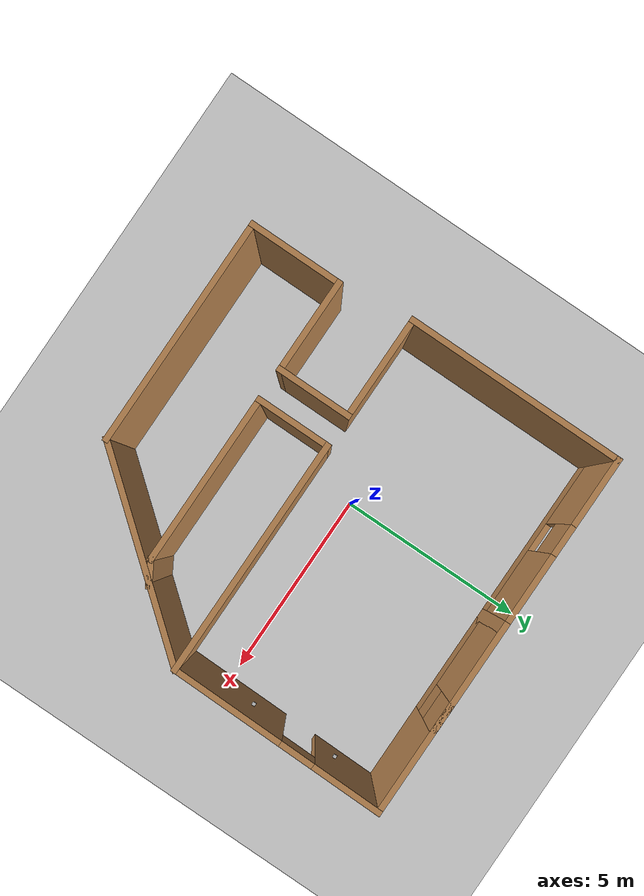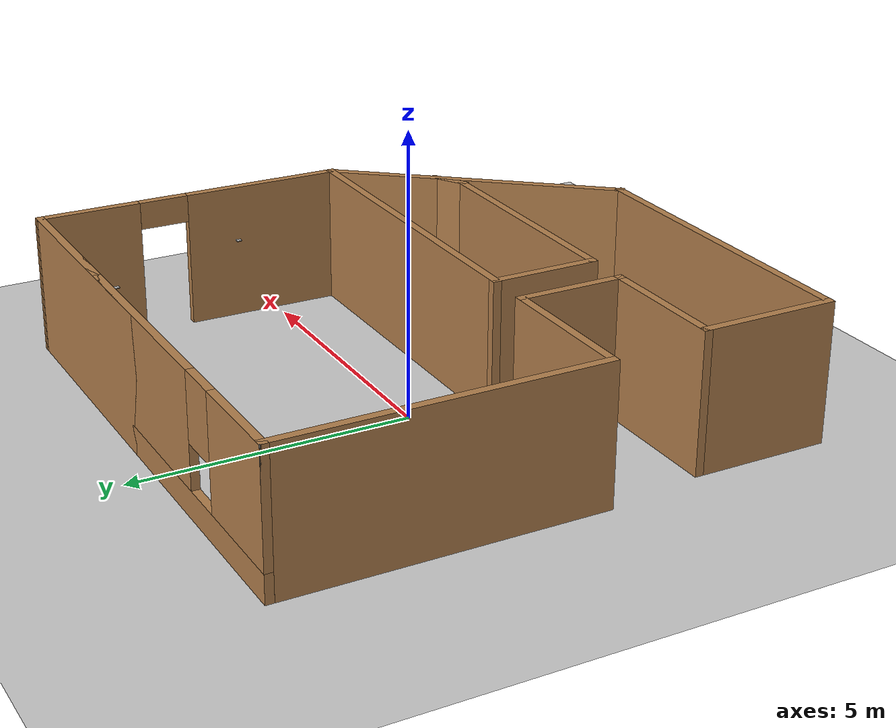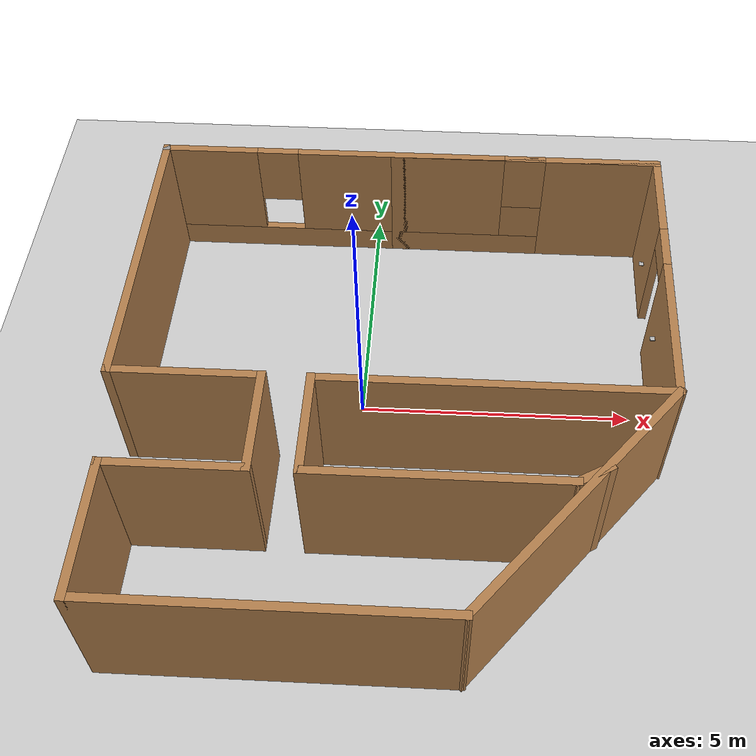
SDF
<sdf version="1.6">
 <world name="default">
  <light name="sun" type="directional">
   <pose>0 0 10 0 -0 0</pose>
   <diffuse>0.8 0.8 0.8 1</diffuse>
   <specular>0.2 0.2 0.2 1</specular>
   <attenuation>
    <range>1000</range>
    <constant>0.9</constant>
    <linear>0.01</linear>
    <quadratic>0.001</quadratic>
   </attenuation>
   <direction>-0.5 0.1 -0.9</direction>
  </light>
  <model name="ground_plane">
   <static>1</static>
   <link name="link">
    <collision name="collision">
     <geometry><plane><normal>0 0 1</normal><size>100 100</size></plane></geometry>
     <surface><friction><ode><mu>100</mu><mu2>50</mu2></ode></friction></surface>
    </collision>
    <visual name="visual">
     <cast_shadows>0</cast_shadows>
     <geometry><plane><normal>0 0 1</normal><size>100 100</size></plane></geometry>
     <material>
      <script><uri>file://media/materials/scripts/gazebo.material</uri><name>Gazebo/Grey</name></script>
     </material>
    </visual>
   </link>
  </model>
  <gravity>0 0 -9.8</gravity>
  <magnetic_field>6e-06 2.3e-05 -4.2e-05</magnetic_field>
  <atmosphere type="adiabatic"/>
  <physics name="default_physics" default="0" type="ode">
   <max_step_size>0.001</max_step_size>
   <real_time_factor>1</real_time_factor>
   <real_time_update_rate>1000</real_time_update_rate>
  </physics>
  <scene><ambient>0.4 0.4 0.4 1</ambient><background>0.7 0.7 0.7 1</background><shadows>1</shadows></scene>
  <spherical_coordinates>
   <surface_model>EARTH_WGS84</surface_model>
   <latitude_deg>0</latitude_deg>
   <longitude_deg>0</longitude_deg>
   <elevation>0</elevation>
   <heading_deg>0</heading_deg>
  </spherical_coordinates>
  <model name="first_world">
   <pose>0.680292 -0.528372 0 0 -0 0</pose>
   <link name="Wall_11">
    <collision name="Wall_11_Collision">
     <geometry><box><size>6.25 0.15 2.5</size></box></geometry>
     <pose>0 0 1.25 0 -0 0</pose>
    </collision>
    <visual name="Wall_11_Visual">
     <pose>0 0 1.25 0 -0 0</pose>
     <geometry><box><size>6.25 0.15 2.5</size></box></geometry>
     <material>
      <script><uri>file://media/materials/scripts/gazebo.material</uri><name>Gazebo/Wood</name></script>
      <ambient>1 1 1 1</ambient>
     </material>
     <meta><layer>0</layer></meta>
    </visual>
    <pose>1.6757 -0.685884 0 0 -0 0</pose>
   </link>
   <link name="Wall_12">
    <pose>4.76261 2.11444 0 0 -0 1.55762</pose>
    <visual name="Wall_12_Visual_0">
     <pose>-1.39116 0 1.25 0 -0 0</pose>
     <geometry><box><size>2.96882 0.15 2.5</size></box></geometry>
     <material>
      <script><uri>file://media/materials/scripts/gazebo.material</uri><name>Gazebo/Wood</name></script>
      <ambient>1 1 1 1</ambient>
     </material>
     <meta><layer>0</layer></meta>
    </visual>
    <collision name="Wall_12_Collision_0">
     <geometry><box><size>2.96882 0.15 2.5</size></box></geometry>
     <pose>-1.39116 0 1.25 0 -0 0</pose>
    </collision>
    <visual name="Wall_12_Visual_1">
     <pose>1.93441 0 1.25 0 -0 0</pose>
     <geometry><box><size>1.88232 0.15 2.5</size></box></geometry>
     <material>
      <script><uri>file://media/materials/scripts/gazebo.material</uri><name>Gazebo/Wood</name></script>
      <ambient>1 1 1 1</ambient>
     </material>
     <meta><layer>0</layer></meta>
    </visual>
    <collision name="Wall_12_Collision_1">
     <geometry><box><size>1.88232 0.15 2.5</size></box></geometry>
     <pose>1.93441 0 1.25 0 -0 0</pose>
    </collision>
    <visual name="Wall_12_Visual_2">
     <pose>0.543254 0 2.25 0 -0 0</pose>
     <geometry><box><size>0.9 0.15 0.5</size></box></geometry>
     <material>
      <script><uri>file://media/materials/scripts/gazebo.material</uri><name>Gazebo/Wood</name></script>
      <ambient>1 1 1 1</ambient>
     </material>
     <meta><layer>0</layer></meta>
    </visual>
    <collision name="Wall_12_Collision_2">
     <geometry><box><size>0.9 0.15 0.5</size></box></geometry>
     <pose>0.543254 0 2.25 0 -0 0</pose>
    </collision>
   </link>
   <link name="Wall_14">
    <collision name="Wall_14_Collision">
     <geometry><box><size>2 0.15 2.5</size></box></geometry>
     <pose>0 0 1.25 0 -0 0</pose>
    </collision>
    <visual name="Wall_14_Visual">
     <pose>0 0 1.25 0 -0 0</pose>
     <geometry><box><size>2 0.15 2.5</size></box></geometry>
     <material>
      <script><uri>file://media/materials/scripts/gazebo.material</uri><name>Gazebo/Wood</name></script>
      <ambient>1 1 1 1</ambient>
     </material>
     <meta><layer>0</layer></meta>
    </visual>
    <pose>-2.20049 -1.61023 0 0 0 -1.5708</pose>
   </link>
   <link name="Wall_15">
    <collision name="Wall_15_Collision">
     <geometry><box><size>2.5 0.15 2.5</size></box></geometry>
     <pose>0 0 1.25 0 -0 0</pose>
    </collision>
    <visual name="Wall_15_Visual">
     <pose>0 0 1.25 0 -0 0</pose>
     <geometry><box><size>2.5 0.15 2.5</size></box></geometry>
     <material>
      <script><uri>file://media/materials/scripts/gazebo.material</uri><name>Gazebo/Wood</name></script>
      <ambient>1 1 1 1</ambient>
     </material>
     <meta><layer>0</layer></meta>
    </visual>
    <pose>-3.37549 -2.53523 0 0 -0 3.14159</pose>
   </link>
   <link name="Wall_16">
    <collision name="Wall_16_Collision">
     <geometry><box><size>2.5 0.15 2.5</size></box></geometry>
     <pose>0 0 1.25 0 -0 0</pose>
    </collision>
    <visual name="Wall_16_Visual">
     <pose>0 0 1.25 0 -0 0</pose>
     <geometry><box><size>2.5 0.15 2.5</size></box></geometry>
     <material>
      <script><uri>file://media/materials/scripts/gazebo.material</uri><name>Gazebo/Wood</name></script>
      <ambient>1 1 1 1</ambient>
     </material>
     <meta><layer>0</layer></meta>
    </visual>
    <pose>-4.55049 -3.71023 0 0 0 -1.5708</pose>
   </link>
   <link name="Wall_17">
    <collision name="Wall_17_Collision">
     <geometry><box><size>6 0.15 2.5</size></box></geometry>
     <pose>0 0 1.25 0 -0 0</pose>
    </collision>
    <visual name="Wall_17_Visual">
     <pose>0 0 1.25 0 -0 0</pose>
     <geometry><box><size>6 0.15 2.5</size></box></geometry>
     <material>
      <script><uri>file://media/materials/scripts/gazebo.material</uri><name>Gazebo/Wood</name></script>
      <ambient>1 1 1 1</ambient>
     </material>
     <meta><layer>0</layer></meta>
    </visual>
    <pose>-1.62549 -4.88523 0 0 -0 0</pose>
   </link>
   <link name="Wall_18">
    <collision name="Wall_18_Collision">
     <geometry><box><size>5.56971 0.15 2.5</size></box></geometry>
     <pose>0 0 1.25 0 -0 0</pose>
    </collision>
    <visual name="Wall_18_Visual">
     <pose>0 0 1.25 0 -0 0</pose>
     <geometry><box><size>5.56971 0.15 2.5</size></box></geometry>
     <material>
      <script><uri>file://media/materials/scripts/gazebo.material</uri><name>Gazebo/Wood</name></script>
      <ambient>1 1 1 1</ambient>
     </material>
     <meta><layer>0</layer></meta>
    </visual>
    <pose>3.01261 -2.78556 0 0 -0 0.886443</pose>
   </link>
   <link name="Wall_20">
    <collision name="Wall_20_Collision">
     <geometry><box><size>2 0.15 2.5</size></box></geometry>
     <pose>0 0 1.25 0 -0 0</pose>
    </collision>
    <visual name="Wall_20_Visual">
     <pose>0 0 1.25 0 -0 0</pose>
     <geometry><box><size>2 0.15 2.5</size></box></geometry>
     <material>
      <script><uri>file://media/materials/scripts/gazebo.material</uri><name>Gazebo/Wood</name></script>
      <ambient>1 1 1 1</ambient>
     </material>
     <meta><layer>0</layer></meta>
    </visual>
    <pose>-1.3743 -1.61088 0 0 0 -1.5708</pose>
   </link>
   <link name="Wall_21">
    <collision name="Wall_21_Collision">
     <geometry><box><size>4.5 0.15 2.5</size></box></geometry>
     <pose>0 0 1.25 0 -0 0</pose>
    </collision>
    <visual name="Wall_21_Visual">
     <pose>0 0 1.25 0 -0 0</pose>
     <geometry><box><size>4.5 0.15 2.5</size></box></geometry>
     <material>
      <script><uri>file://media/materials/scripts/gazebo.material</uri><name>Gazebo/Wood</name></script>
      <ambient>1 1 1 1</ambient>
     </material>
     <meta><layer>0</layer></meta>
    </visual>
    <pose>0.800703 -2.53588 0 0 -0 0</pose>
   </link>
   <link name="Wall_22">
    <collision name="Wall_22_Collision">
     <geometry><box><size>0.75 0.15 2.5</size></box></geometry>
     <pose>0 0 1.25 0 -0 0</pose>
    </collision>
    <visual name="Wall_22_Visual">
     <pose>0 0 1.25 0 -0 0</pose>
     <geometry><box><size>0.75 0.15 2.5</size></box></geometry>
     <material>
      <script><uri>file://media/materials/scripts/gazebo.material</uri><name>Gazebo/Wood</name></script>
      <ambient>1 1 1 1</ambient>
     </material>
     <meta><layer>0</layer></meta>
    </visual>
    <pose>3.23551 -2.38588 0 0 -0 0.523599</pose>
   </link>
   <link name="Wall_5">
    <collision name="Wall_5_Collision">
     <geometry><box><size>5.25 0.15 2.5</size></box></geometry>
     <pose>0 0 1.25 0 -0 0</pose>
    </collision>
    <visual name="Wall_5_Visual">
     <pose>0 0 1.25 0 -0 0</pose>
     <geometry><box><size>5.25 0.15 2.5</size></box></geometry>
     <material>
      <script><uri>file://media/materials/scripts/gazebo.material</uri><name>Gazebo/Wood</name></script>
      <ambient>1 1 1 1</ambient>
     </material>
     <meta><layer>0</layer></meta>
    </visual>
    <pose>2.24951 4.91477 0 0 -0 0</pose>
   </link>
   <link name="Wall_6">
    <pose>-0.000491 4.91477 0 0 -0 3.14159</pose>
    <visual name="Wall_6_Visual_0">
     <pose>-3.7623 0 1.25 0 -0 0</pose>
     <geometry><box><size>2.22539 0.15 2.5</size></box></geometry>
     <material>
      <script><uri>file://media/materials/scripts/gazebo.material</uri><name>Gazebo/Wood</name></script>
      <ambient>1 1 1 1</ambient>
     </material>
     <meta><layer>0</layer></meta>
    </visual>
    <collision name="Wall_6_Collision_0">
     <geometry><box><size>2.22539 0.15 2.5</size></box></geometry>
     <pose>-3.7623 0 1.25 0 -0 0</pose>
    </collision>
    <visual name="Wall_6_Visual_1">
     <pose>1.1127 0 0.25 0 -0 0</pose>
     <geometry><box><size>7.52461 0.15 0.5</size></box></geometry>
     <material>
      <script><uri>file://media/materials/scripts/gazebo.material</uri><name>Gazebo/Wood</name></script>
      <ambient>1 1 1 1</ambient>
     </material>
     <meta><layer>0</layer></meta>
    </visual>
    <collision name="Wall_6_Collision_1">
     <geometry><box><size>7.52461 0.15 0.5</size></box></geometry>
     <pose>1.1127 0 0.25 0 -0 0</pose>
    </collision>
    <visual name="Wall_6_Visual_2">
     <pose>0.177728 0 1.5 0 -0 0</pose>
     <geometry><box><size>4.05467 0.15 2</size></box></geometry>
     <material>
      <script><uri>file://media/materials/scripts/gazebo.material</uri><name>Gazebo/Wood</name></script>
      <ambient>1 1 1 1</ambient>
     </material>
     <meta><layer>0</layer></meta>
    </visual>
    <collision name="Wall_6_Collision_2">
     <geometry><box><size>4.05467 0.15 2</size></box></geometry>
     <pose>0.177728 0 1.5 0 -0 0</pose>
    </collision>
    <visual name="Wall_6_Visual_3">
     <pose>3.94003 0 1.5 0 -0 0</pose>
     <geometry><box><size>1.86994 0.15 2</size></box></geometry>
     <material>
      <script><uri>file://media/materials/scripts/gazebo.material</uri><name>Gazebo/Wood</name></script>
      <ambient>1 1 1 1</ambient>
     </material>
     <meta><layer>0</layer></meta>
    </visual>
    <collision name="Wall_6_Collision_3">
     <geometry><box><size>1.86994 0.15 2</size></box></geometry>
     <pose>3.94003 0 1.5 0 -0 0</pose>
    </collision>
    <visual name="Wall_6_Visual_4">
     <pose>-2.24961 0 1.9 0 -0 0</pose>
     <geometry><box><size>0.8 0.15 1.2</size></box></geometry>
     <material>
      <script><uri>file://media/materials/scripts/gazebo.material</uri><name>Gazebo/Wood</name></script>
      <ambient>1 1 1 1</ambient>
     </material>
     <meta><layer>0</layer></meta>
    </visual>
    <collision name="Wall_6_Collision_4">
     <geometry><box><size>0.8 0.15 1.2</size></box></geometry>
     <pose>-2.24961 0 1.9 0 -0 0</pose>
    </collision>
    <visual name="Wall_6_Visual_5">
     <pose>2.60506 0 1.9 0 -0 0</pose>
     <geometry><box><size>0.8 0.15 1.2</size></box></geometry>
     <material>
      <script><uri>file://media/materials/scripts/gazebo.material</uri><name>Gazebo/Wood</name></script>
      <ambient>1 1 1 1</ambient>
     </material>
     <meta><layer>0</layer></meta>
    </visual>
    <collision name="Wall_6_Collision_5">
     <geometry><box><size>0.8 0.15 1.2</size></box></geometry>
     <pose>2.60506 0 1.9 0 -0 0</pose>
    </collision>
   </link>
   <link name="Wall_7">
    <collision name="Wall_7_Collision">
     <geometry><box><size>0.15 0.15 2.5</size></box></geometry>
     <pose>0 0 1.25 0 -0 0</pose>
    </collision>
    <visual name="Wall_7_Visual">
     <pose>0 0 1.25 0 -0 0</pose>
     <geometry><box><size>0.15 0.15 2.5</size></box></geometry>
     <material>
      <script><uri>file://media/materials/scripts/gazebo.material</uri><name>Gazebo/Grey</name></script>
      <ambient>1 1 1 1</ambient>
     </material>
     <meta><layer>0</layer></meta>
    </visual>
    <pose>-4.80049 4.91477 0 0 -0 0</pose>
   </link>
   <link name="Wall_8">
    <collision name="Wall_8_Collision">
     <geometry><box><size>5.75 0.15 2.5</size></box></geometry>
     <pose>0 0 1.25 0 -0 0</pose>
    </collision>
    <visual name="Wall_8_Visual">
     <pose>0 0 1.25 0 -0 0</pose>
     <geometry><box><size>5.75 0.15 2.5</size></box></geometry>
     <material>
      <script><uri>file://media/materials/scripts/gazebo.material</uri><name>Gazebo/Wood</name></script>
      <ambient>1 1 1 1</ambient>
     </material>
     <meta><layer>0</layer></meta>
    </visual>
    <pose>-4.80049 2.11477 0 0 0 -1.5708</pose>
   </link>
   <link name="Wall_9">
    <collision name="Wall_9_Collision">
     <geometry><box><size>2.75 0.15 2.5</size></box></geometry>
     <pose>0 0 1.25 0 -0 0</pose>
    </collision>
    <visual name="Wall_9_Visual">
     <pose>0 0 1.25 0 -0 0</pose>
     <geometry><box><size>2.75 0.15 2.5</size></box></geometry>
     <material>
      <script><uri>file://media/materials/scripts/gazebo.material</uri><name>Gazebo/Wood</name></script>
      <ambient>1 1 1 1</ambient>
     </material>
     <meta><layer>0</layer></meta>
    </visual>
    <pose>-3.50049 -0.685228 0 0 -0 0</pose>
   </link>
   <static>1</static>
  </model>
  <model name="Marker0">
   <static>1</static>
   <link name="link">
    <visual name="visual">
     <geometry><mesh><uri>model://Marker_000/meshes/Marker0.dae</uri></mesh></geometry>
    </visual>
   </link>
   <pose>5.27196 0.753828 1.5 0 -0 0</pose>
  </model>
  <model name="Marker0_0">
   <static>1</static>
   <link name="link">
    <visual name="visual">
     <geometry><mesh><uri>model://Marker_000/meshes/Marker0.dae</uri></mesh></geometry>
    </visual>
   </link>
   <pose>5.33389 3.13476 1 0 -0 0</pose>
  </model>
 </world>
</sdf>
